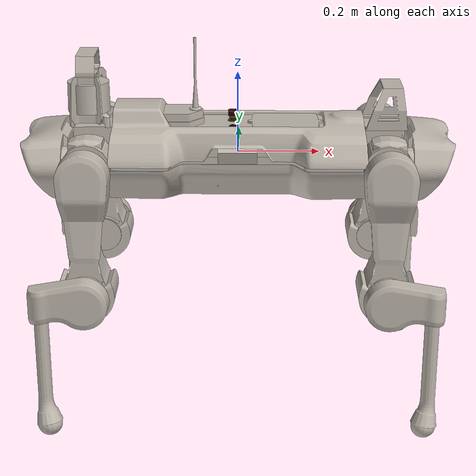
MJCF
<?xml version="1.0" ?>
<mujoco model="anymal_c">
	<compiler meshdir="anymal_c/meshes" texturedir="anymal_c/textures" angle="radian" autolimits="true" balanceinertia="true" boundmass="0.000001" boundinertia="0.000001"/>
	<default>
		<default class="visual">
			<geom contype="0" conaffinity="0"/>
		</default>
		<default class="collision">
			<geom rgba="1.0 0.0 0.0 0.0"/>
		</default>
	</default>
	<asset>
		<mesh name="base_0" file="stl/base_0.stl" scale="1.0 1.0 1.0"/>
		<mesh name="base_1" file="stl/base_1.stl" scale="1.0 1.0 1.0"/>
		<mesh name="base_2" file="stl/base_2.stl" scale="1.0 1.0 1.0"/>
		<mesh name="base_3" file="stl/base_3.stl" scale="1.0 1.0 1.0"/>
		<mesh name="base_4" file="stl/base_4.stl" scale="1.0 1.0 1.0"/>
		<mesh name="base_5" file="obj/base_5.obj" scale="1.0 1.0 1.0"/>
		<mesh name="top_shell" file="obj/top_shell.obj" scale="1.0 1.0 1.0"/>
		<mesh name="bottom_shell" file="obj/bottom_shell.obj" scale="1.0 1.0 1.0"/>
		<mesh name="remote" file="obj/remote.obj" scale="1.0 1.0 1.0"/>
		<mesh name="handle" file="obj/handle.obj" scale="1.0 1.0 1.0"/>
		<mesh name="face" file="obj/face.obj" scale="1.0 1.0 1.0"/>
		<mesh name="depth_camera" file="obj/depth_camera.obj" scale="1.0 1.0 1.0"/>
		<mesh name="wide_angle_camera" file="obj/wide_angle_camera.obj" scale="1.0 1.0 1.0"/>
		<mesh name="battery" file="obj/battery.obj" scale="1.0 1.0 1.0"/>
		<mesh name="lidar_cage" file="obj/lidar_cage.obj" scale="1.0 1.0 1.0"/>
		<mesh name="lidar" file="obj/lidar.obj" scale="1.0 1.0 1.0"/>
		<mesh name="drive" file="obj/drive.obj" scale="1.0 1.0 1.0"/>
		<mesh name="hatch" file="obj/hatch.obj" scale="1.0 1.0 1.0"/>
		<mesh name="hip_l" file="obj/hip_l.obj" scale="1.0 1.0 1.0"/>
		<mesh name="thigh" file="obj/thigh.obj" scale="1.0 1.0 1.0"/>
		<mesh name="shank_l" file="obj/shank_l.obj" scale="1.0 1.0 1.0"/>
		<mesh name="foot" file="obj/foot.obj" scale="1.0 1.0 1.0"/>
		<mesh name="hip_r" file="obj/hip_r.obj" scale="1.0 1.0 1.0"/>
		<mesh name="shank_r" file="obj/shank_r.obj" scale="1.0 1.0 1.0"/>
		<material name="green" rgba="0.052000001072883606 0.17800000309944153 0.032999999821186066 1.0" emission="0.0" specular="0.0"/>
		<material name="yellow" rgba="0.17800000309944153 0.11900000274181366 0.006000000052154064 1.0" emission="0.0" specular="0.0"/>
		<material name="red" rgba="0.17800000309944153 0.006000000052154064 0.004999999888241291 1.0" emission="0.0" specular="0.0"/>
		<material name="black_plastic" rgba="0.007000000216066837 0.007000000216066837 0.007000000216066837 1.0" emission="0.0" specular="0.0"/>
		<material name="lwl" rgba="0.800000011920929 0.800000011920929 0.800000011920929 1.0" emission="0.0" specular="0.0"/>
		<material name="base" texture="base"/>
		<material name="top_shell" texture="top_shell"/>
		<material name="bottom_shell" texture="bottom_shell"/>
		<material name="remote" texture="remote"/>
		<material name="handle" texture="handle"/>
		<material name="face" texture="face"/>
		<material name="depth_camera" texture="depth_camera"/>
		<material name="wide_angle_camera" texture="wide_angle_camera"/>
		<material name="battery" texture="battery"/>
		<material name="lidar_cage" texture="lidar_cage"/>
		<material name="lidar" texture="lidar"/>
		<material name="drive" texture="drive"/>
		<material name="hatch" texture="hatch"/>
		<material name="hip_l" texture="hip_l"/>
		<material name="thigh" texture="thigh"/>
		<material name="shank_l" texture="shank_l"/>
		<material name="foot" texture="foot"/>
		<material name="hip_r" texture="hip_r"/>
		<material name="shank" texture="shank_r"/>
		<texture name="base" type="2d" file="base.png"/>
		<texture name="top_shell" type="2d" file="top_shell.png"/>
		<texture name="bottom_shell" type="2d" file="bottom_shell.png"/>
		<texture name="remote" type="2d" file="remote.png"/>
		<texture name="handle" type="2d" file="handle.png"/>
		<texture name="face" type="2d" file="face.png"/>
		<texture name="depth_camera" type="2d" file="depth_camera.png"/>
		<texture name="wide_angle_camera" type="2d" file="wide_angle_camera.png"/>
		<texture name="battery" type="2d" file="battery.png"/>
		<texture name="lidar_cage" type="2d" file="lidar_cage.png"/>
		<texture name="lidar" type="2d" file="lidar.png"/>
		<texture name="drive" type="2d" file="drive.png"/>
		<texture name="hatch" type="2d" file="hatch.png"/>
		<texture name="hip_l" type="2d" file="hip_l.png"/>
		<texture name="thigh" type="2d" file="thigh.png"/>
		<texture name="shank_l" type="2d" file="shank_l.png"/>
		<texture name="foot" type="2d" file="foot.png"/>
		<texture name="hip_r" type="2d" file="hip_r.png"/>
		<texture name="shank_r" type="2d" file="shank_r.png"/>
	</asset>
	<worldbody>
		<body name="anymal_c" pos="0.0 0.0 0.0" quat="1.0 0.0 0.0 0.0">
			<body name="base" pos="0.0 0.0 0.0" quat="1.0 0.0 0.0 0.0">
				<geom name="Geom_0" type="mesh" pos="-0.011599770747125149 0.01999977044761181 0.08447550982236862" quat="0.5 0.5 -0.5 0.5" mesh="base_0" material="green" class="visual"/>
				<geom name="Geom_1" type="mesh" pos="-0.011599785648286343 0.019999781623482704 0.07711783796548843" quat="0.5 0.5 -0.5 0.5" mesh="base_1" material="yellow" class="visual"/>
				<geom name="Geom_2" type="mesh" pos="-0.011599860154092312 0.01999989151954651 0.0938289538025856" quat="3.1764270715939347e-06 0.7071042060852051 3.17645026370883e-06 0.7071093916893005" mesh="base_2" material="red" class="visual"/>
				<geom name="Geom_3" type="mesh" pos="-0.011599920690059662 -0.034999456256628036 0.06816615164279938" quat="1.0 0.0 0.0 0.0" mesh="base_3" material="black_plastic" class="visual"/>
				<geom name="Geom_4" type="mesh" pos="-0.011599943973124027 -0.034999407827854156 0.07339996844530106" quat="0.5 0.5 -0.5 0.5" mesh="base_4" material="lwl" class="visual"/>
				<geom name="Geom_5" type="mesh" pos="0.036819808185100555 -2.975935053939338e-09 0.021578945219516754" quat="0.0 0.72342848777771 0.0 0.6903992891311646" mesh="base_5" material="base" class="visual"/>
				<geom name="Geom_6" type="box" pos="0.0 0.0 0.0" quat="1.0 0.0 0.0 0.0" size="0.28999999165534973 0.07000000029802322 0.09000000357627869" class="collision"/>
				<geom name="Geom_7" type="cylinder" pos="0.2175000011920929 0.07000000029802322 0.0" quat="0.7071067690849304 0.0 0.7071067690849304 0.0" size="0.09000000357627869 0.07249999791383743 0.0" class="collision"/>
				<geom name="Geom_8" type="cylinder" pos="-0.2175000011920929 0.07000000029802322 0.0" quat="0.7071067690849304 0.0 0.7071067690849304 0.0" size="0.09000000357627869 0.07249999791383743 0.0" class="collision"/>
				<geom name="Geom_9" type="cylinder" pos="0.2175000011920929 -0.07000000029802322 0.0" quat="0.7071067690849304 0.0 0.7071067690849304 0.0" size="0.09000000357627869 0.07249999791383743 0.0" class="collision"/>
				<geom name="Geom_10" type="cylinder" pos="-0.2175000011920929 -0.07000000029802322 0.0" quat="0.7071067690849304 0.0 0.7071067690849304 0.0" size="0.09000000357627869 0.07249999791383743 0.0" class="collision"/>
				<geom name="Geom_11" type="mesh" pos="-0.0026326263323426247 0.00041710055666044354 0.06210428848862648" quat="-5.8360751609143335e-06 0.7142897844314575 -1.4573529369954485e-05 0.6998500227928162" mesh="top_shell" material="top_shell" class="visual"/>
				<geom name="Geom_12" type="mesh" pos="-0.0006547375814989209 4.4404549726095865e-07 -0.06612871587276459" quat="-1.1017913493560627e-05 0.707190752029419 1.965868978004437e-05 0.7070227861404419" mesh="bottom_shell" material="bottom_shell" class="visual"/>
				<geom name="Geom_13" type="mesh" pos="-0.16322645545005798 1.217122417074279e-06 0.09824134409427643" quat="0.5831565260887146 0.39986345171928406 0.3996984660625458 0.5833342671394348" mesh="remote" material="remote" class="visual"/>
				<geom name="Geom_14" type="mesh" pos="0.3647890090942383 2.5179431872857094e-09 0.11878526210784912" quat="0.7011937499046326 0.7011937499046326 0.09125423431396484 -0.09125423431396484" mesh="handle" material="handle" class="visual"/>
				<geom name="Geom_15" type="mesh" pos="0.45985445380210876 -1.9454962966847233e-05 -0.006234311033040285" quat="0.702586829662323 0.7026491165161133 0.07948784530162811 -0.07960972934961319" mesh="face" material="face" class="visual"/>
				<geom name="Geom_16" type="box" pos="0.46950000524520874 0.0 0.0" quat="1.0 0.0 0.0 0.0" size="0.054999999701976776 0.07000000029802322 0.09000000357627869" class="collision"/>
				<geom name="Geom_17" type="cylinder" pos="0.46950000524520874 0.07000000029802322 0.0" quat="0.7071067690849304 0.0 0.7071067690849304 0.0" size="0.09000000357627869 0.054999999701976776 0.0" class="collision"/>
				<geom name="Geom_18" type="cylinder" pos="0.46950000524520874 -0.07000000029802322 0.0" quat="0.7071067690849304 0.0 0.7071067690849304 0.0" size="0.09000000357627869 0.054999999701976776 0.0" class="collision"/>
				<geom name="Geom_19" type="mesh" pos="0.4747720956802368 0.0 -0.03687187656760216" quat="0.6830127239227295 0.6830127239227295 0.18301263451576233 -0.18301263451576233" mesh="depth_camera" material="depth_camera" class="visual"/>
				<geom name="Geom_20" type="mesh" pos="0.5005862712860107 -2.7428591238276567e-06 0.008976703509688377" quat="0.9979866147041321 -0.00011796713079093024 0.06342367827892303 0.0003027316415682435" mesh="wide_angle_camera" material="wide_angle_camera" class="visual"/>
				<geom name="Geom_21" type="mesh" pos="-0.45985445380210876 1.9454962966847233e-05 -0.006234311033040285" quat="0.07960972934961319 -0.07948784530162811 0.7026491165161133 0.702586829662323" mesh="face" material="face" class="visual"/>
				<geom name="Geom_22" type="box" pos="-0.46950000524520874 0.0 0.0" quat="0.0 0.0 0.0 1.0" size="0.054999999701976776 0.07000000029802322 0.09000000357627869" class="collision"/>
				<geom name="Geom_23" type="cylinder" pos="-0.46950000524520874 -0.07000000029802322 0.0" quat="0.0 -0.7071067690849304 0.0 0.7071067690849304" size="0.09000000357627869 0.054999999701976776 0.0" class="collision"/>
				<geom name="Geom_24" type="cylinder" pos="-0.46950000524520874 0.07000000029802322 0.0" quat="0.0 -0.7071067690849304 0.0 0.7071067690849304" size="0.09000000357627869 0.054999999701976776 0.0" class="collision"/>
				<geom name="Geom_25" type="mesh" pos="-0.4747720956802368 0.0 -0.03687187656760216" quat="0.18301263451576233 -0.18301263451576233 0.6830127239227295 0.6830127239227295" mesh="depth_camera" material="depth_camera" class="visual"/>
				<geom name="Geom_26" type="mesh" pos="-0.5005862712860107 2.7428591238276567e-06 0.008976703509688377" quat="-0.0003027316415682435 -0.06342367827892303 -0.00011796713079093024 0.9979866147041321" mesh="wide_angle_camera" material="wide_angle_camera" class="visual"/>
				<geom name="Geom_27" type="mesh" pos="0.00316600501537323 -5.988961859800439e-19 -0.03308949992060661" quat="0.0 0.7071067690849304 0.0 0.7071067690849304" mesh="battery" material="battery" class="visual"/>
				<geom name="Geom_28" type="mesh" pos="-8.437695129426255e-19 0.08958207815885544 0.021378111094236374" quat="0.6123725175857544 0.3535532057285309 0.6123725175857544 0.3535532057285309" mesh="depth_camera" material="depth_camera" class="visual"/>
				<geom name="Geom_29" type="mesh" pos="-8.437695129426255e-19 -0.08958207815885544 0.021378111094236374" quat="0.3535532057285309 0.6123725175857544 -0.3535532057285309 -0.6123725175857544" mesh="depth_camera" material="depth_camera" class="visual"/>
				<geom name="Geom_30" type="mesh" pos="-0.36216145753860474 6.294024205999449e-05 0.1638614982366562" quat="0.9998769164085388 -0.00061993912095204 -0.015667341649532318 -0.0005074403597973287" mesh="lidar_cage" material="lidar_cage" class="visual"/>
				<geom name="Geom_31" type="cylinder" pos="-0.36399999260902405 0.0 0.13349999487400055" quat="1.0 0.0 0.0 0.0" size="0.07000000029802322 0.05999999865889549 0.0" class="collision"/>
				<geom name="Geom_32" type="mesh" pos="-0.36399999260902405 0.0003928735386580229 0.14043888449668884" quat="0.6377901434898376 0.30532556772232056 -0.6377891898155212 0.3053276836872101" mesh="lidar" material="lidar" class="visual"/>
				<geom name="Geom_33" type="mesh" pos="0.23129335045814514 0.10364477336406708 -0.0006153398426249623" quat="-0.3530530631542206 0.6126502752304077 -0.3540867567062378 0.6120749711990356" mesh="drive" material="drive" class="visual"/>
				<geom name="Geom_34" type="mesh" pos="0.23129335045814514 -0.1036447137594223 -0.0006153053836897016" quat="0.6120780110359192 -0.35404425859451294 0.6126855611801147 -0.3530292212963104" mesh="drive" material="drive" class="visual"/>
				<geom name="Geom_35" type="mesh" pos="-0.23129335045814514 0.1036447137594223 -0.0006153053836897016" quat="-0.3530292212963104 0.6126855611801147 0.35404425859451294 -0.6120780110359192" mesh="drive" material="drive" class="visual"/>
				<geom name="Geom_36" type="mesh" pos="-0.23129335045814514 -0.10364477336406708 -0.0006153398426249623" quat="0.6120749711990356 -0.3540867567062378 -0.6126502752304077 0.3530530631542206" mesh="drive" material="drive" class="visual"/>
				<geom name="Geom_37" type="mesh" pos="0.11599999666213989 -2.804344647125423e-12 0.07641233503818512" quat="0.0 0.7071067690849304 0.0 0.7071067690849304" mesh="hatch" material="hatch" class="visual"/>
				<body name="RF_HIP" pos="0.29989999532699585 -0.10400000214576721 0.0" quat="0.25881895422935486 -0.9659258723258972 0.0 0.0">
					<inertial mass="2.7809998989105225" pos="0.05676329880952835 0.015293999575078487 -0.008297840133309364" quat="0.13523992896080017 0.6790716052055359 0.1279849261045456 0.7100645899772644" diaginertia="0.005859280005097389 0.004920499864965677 0.0032906399574130774"/>
					<geom name="Geom_52" type="mesh" pos="0.07955124974250793 -0.0013034200528636575 -0.0015909073408693075" quat="-0.36329787969589233 0.6085743308067322 -0.34360766410827637 0.6161052584648132" mesh="hip_r" material="hip_r" class="visual"/>
					<geom name="Geom_53" type="mesh" pos="0.05989996716380119 0.01281125657260418 -0.008216958492994308" quat="-0.49927523732185364 0.8664434552192688 -3.0048206099309027e-05 -2.1409646251413506e-06" mesh="drive" material="drive" class="visual"/>
					<geom name="Geom_54" type="cylinder" pos="0.05990000069141388 0.011959799565374851 -0.006905000191181898" quat="-0.35355329513549805 0.6123725175857544 0.6123725175857544 0.35355329513549805" size="0.05000000074505806 0.07000000029802322 0.0" class="collision"/>
					<joint name="RF_HAA" type="hinge" pos="0.0 0.0 0.0" range="-0.49000000953674316 0.7200000286102295" axis="1.0 0.0 0.0"/>
					<body name="RF_THIGH" pos="0.05990000069141388 0.07258159667253494 -0.0419050008058548" quat="0.18301290273666382 0.6830126643180847 0.6830126643180847 -0.18301290273666382">
						<inertial mass="3.071000099182129" pos="0.030814699828624725 4.649949914892204e-05 -0.24569599330425262" quat="0.9927749037742615 -0.005127349402755499 -0.08066849410533905 0.08868108689785004" diaginertia="0.030251100659370422 0.0298932995647192 0.004184499848634005"/>
						<geom name="Geom_55" type="mesh" pos="0.019896067678928375 -3.135157749056816e-05 -0.1903664767742157" quat="0.9995383620262146 -8.072755008470267e-06 0.03038012981414795 0.00025633489713072777" mesh="thigh" material="thigh" class="visual"/>
						<geom name="Geom_56" type="cylinder" pos="0.03999999910593033 0.0 0.0" quat="0.5 0.5 0.5 0.5" size="0.06499999761581421 0.03999999910593033 0.0" class="collision"/>
						<geom name="Geom_57" type="box" pos="0.029999999329447746 0.0 -0.14131399989128113" quat="0.7071067690849304 0.0 0.0 0.7071067690849304" size="0.03750000149011612 0.029999999329447746 0.14131399989128113" class="collision"/>
						<geom name="Geom_58" type="mesh" pos="0.031693343073129654 -3.448225882607403e-08 -0.28428947925567627" quat="0.5003978610038757 0.49958860874176025 0.4995746612548828 0.5004381537437439" mesh="drive" material="drive" class="visual"/>
						<geom name="Geom_59" type="cylinder" pos="0.030300000682473183 0.0 -0.2849999964237213" quat="0.7071067690849304 0.0 0.7071067690849304 0.0" size="0.05000000074505806 0.07000000029802322 0.0" class="collision"/>
						<joint name="RF_HFE" type="hinge" pos="0.0 0.0 0.0" range="-9.424779891967773 9.424779891967773" axis="-1.0 0.0 0.0"/>
						<body name="RF_SHANK" pos="0.10029999911785126 0.0 -0.2849999964237213" quat="1.0 0.0 0.0 0.0">
							<inertial mass="0.5884199738502502" pos="0.005462000146508217 0.06125279888510704 -0.08065979927778244" quat="0.992933988571167 0.11590399593114853 -0.0010548699647188187 0.025442099198698997" diaginertia="0.010163700208067894 0.009238380007445812 0.0011192699894309044"/>
							<geom name="Geom_60" type="mesh" pos="0.006487637292593718 0.034592535346746445 0.0008805529796518385" quat="-0.0017478355439379811 -0.00019462202908471227 0.7092111110687256 0.7049939632415771" mesh="shank_r" material="shank" class="visual"/>
							<geom name="Geom_61" type="cylinder" pos="0.019999999552965164 0.0 0.0" quat="0.5 0.5 0.5 0.5" size="0.05999999865889549 0.019999999552965164 0.0" class="collision"/>
							<geom name="Geom_62" type="box" pos="0.019999999552965164 0.057498998939991 0.0" quat="0.5 0.5 0.5 0.5" size="0.057498998939991 0.03375000134110451 0.01899999938905239" class="collision"/>
							<geom name="Geom_63" type="mesh" pos="0.0019037557067349553 0.09909936040639877 -0.19530461728572845" quat="-0.38260531425476074 -0.007759032770991325 0.01873193122446537 0.9236893653869629" mesh="foot" material="foot" class="visual"/>
							<geom name="Geom_64" type="cylinder" pos="0.013050000183284283 0.08794999867677689 -0.16898499429225922" quat="0.7071067690849304 0.0 0.0 0.7071067690849304" size="0.017500000074505806 0.14125199615955353 0.0" class="collision"/>
							<geom name="Geom_65" type="sphere" pos="0.013050000183284283 0.08794999867677689 -0.31547001004219055" quat="0.7071067690849304 0.0 0.0 0.7071067690849304" size="0.029999999329447746 0.0 0.0" class="collision"/>
							<joint name="RF_KFE" type="hinge" pos="0.0 0.0 0.0" range="-9.424779891967773 9.424779891967773" axis="-1.0 0.0 0.0"/>
						</body>
					</body>
				</body>
				<body name="LH_HIP" pos="-0.29989999532699585 0.10400000214576721 0.0" quat="0.0 0.0 0.9659258723258972 -0.25881895422935486">
					<inertial mass="2.7809998989105225" pos="0.05676329880952835 0.015293999575078487 -0.008297840133309364" quat="0.13523992896080017 0.6790716052055359 0.1279849261045456 0.7100645899772644" diaginertia="0.005859280005097389 0.004920499864965677 0.0032906399574130774"/>
					<geom name="Geom_66" type="mesh" pos="0.07955124974250793 -0.0013034200528636575 -0.0015909073408693075" quat="0.36329787969589233 -0.6085743308067322 0.34360766410827637 -0.6161052584648132" mesh="hip_r" material="hip_r" class="visual"/>
					<geom name="Geom_67" type="mesh" pos="0.05989996716380119 0.01281125657260418 -0.008216958492994308" quat="-0.49927523732185364 0.8664434552192688 -3.0048206099309027e-05 -2.1409646251413506e-06" mesh="drive" material="drive" class="visual"/>
					<geom name="Geom_68" type="cylinder" pos="0.05990000069141388 0.011959799565374851 -0.006905000191181898" quat="-0.35355329513549805 0.6123725175857544 0.6123725175857544 0.35355329513549805" size="0.05000000074505806 0.07000000029802322 0.0" class="collision"/>
					<joint name="LH_HAA" type="hinge" pos="0.0 0.0 0.0" range="-0.7200000286102295 0.49000000953674316" axis="-1.0 0.0 0.0"/>
					<body name="LH_THIGH" pos="0.05990000069141388 0.07258159667253494 -0.0419050008058548" quat="0.18301290273666382 0.6830126643180847 0.6830126643180847 -0.18301290273666382">
						<inertial mass="3.071000099182129" pos="0.030814699828624725 4.649949914892204e-05 -0.24569599330425262" quat="0.9927749037742615 -0.005127349402755499 -0.08066849410533905 0.08868108689785004" diaginertia="0.030251100659370422 0.0298932995647192 0.004184499848634005"/>
						<geom name="Geom_69" type="mesh" pos="0.019896067678928375 -3.135157749056816e-05 -0.1903664767742157" quat="0.9995383620262146 -8.072755008470267e-06 0.03038012981414795 0.00025633489713072777" mesh="thigh" material="thigh" class="visual"/>
						<geom name="Geom_70" type="cylinder" pos="0.03999999910593033 0.0 0.0" quat="0.5 0.5 -0.5 -0.5" size="0.06499999761581421 0.03999999910593033 0.0" class="collision"/>
						<geom name="Geom_71" type="box" pos="0.029999999329447746 0.0 -0.14131399989128113" quat="0.7071067690849304 0.0 0.0 -0.7071067690849304" size="0.03750000149011612 0.029999999329447746 0.14131399989128113" class="collision"/>
						<geom name="Geom_72" type="mesh" pos="0.031693343073129654 -3.448225882607403e-08 -0.28428947925567627" quat="0.5003978610038757 0.49958860874176025 0.4995746612548828 0.5004381537437439" mesh="drive" material="drive" class="visual"/>
						<geom name="Geom_73" type="cylinder" pos="0.030300000682473183 0.0 -0.2849999964237213" quat="0.7071067690849304 0.0 0.7071067690849304 0.0" size="0.05000000074505806 0.07000000029802322 0.0" class="collision"/>
						<joint name="LH_HFE" type="hinge" pos="0.0 0.0 0.0" range="-9.424779891967773 9.424779891967773" axis="1.0 0.0 0.0"/>
						<body name="LH_SHANK" pos="0.10029999911785126 0.0 -0.2849999964237213" quat="1.0 0.0 0.0 0.0">
							<inertial mass="0.5884199738502502" pos="0.005462000146508217 0.06125279888510704 -0.08065979927778244" quat="0.992933988571167 0.11590399593114853 -0.0010548699647188187 0.025442099198698997" diaginertia="0.010163700208067894 0.009238380007445812 0.0011192699894309044"/>
							<geom name="Geom_74" type="mesh" pos="0.006487637292593718 0.034592535346746445 0.0008805529796518385" quat="0.0017478355439379811 0.00019462202908471227 -0.7092111110687256 -0.7049939632415771" mesh="shank_r" material="shank" class="visual"/>
							<geom name="Geom_75" type="cylinder" pos="0.019999999552965164 0.0 0.0" quat="0.5 0.5 -0.5 -0.5" size="0.05999999865889549 0.019999999552965164 0.0" class="collision"/>
							<geom name="Geom_76" type="box" pos="0.019999999552965164 0.057498998939991 0.0" quat="0.5 0.5 -0.5 -0.5" size="0.057498998939991 0.03375000134110451 0.01899999938905239" class="collision"/>
							<geom name="Geom_77" type="mesh" pos="0.0019037557067349553 0.09909936040639877 -0.19530461728572845" quat="0.38260531425476074 0.007759032770991325 -0.01873193122446537 -0.9236893653869629" mesh="foot" material="foot" class="visual"/>
							<geom name="Geom_78" type="cylinder" pos="0.013050000183284283 0.08794999867677689 -0.16898499429225922" quat="0.7071067690849304 0.0 0.0 -0.7071067690849304" size="0.017500000074505806 0.14125199615955353 0.0" class="collision"/>
							<geom name="Geom_79" type="sphere" pos="0.013050000183284283 0.08794999867677689 -0.31547001004219055" quat="0.7071067690849304 0.0 0.0 -0.7071067690849304" size="0.029999999329447746 0.0 0.0" class="collision"/>
							<joint name="LH_KFE" type="hinge" pos="0.0 0.0 0.0" range="-9.424779891967773 9.424779891967773" axis="1.0 0.0 0.0"/>
						</body>
					</body>
				</body>
				<body name="RH_HIP" pos="-0.29989999532699585 -0.10400000214576721 0.0" quat="0.0 0.0 -0.9659258723258972 -0.25881895422935486">
					<inertial mass="2.7809998989105225" pos="0.05666060000658035 -0.015293999575078487 -0.008297840133309364" quat="-0.12797805666923523 0.7097833156585693 -0.13527806103229523 0.6793593168258667" diaginertia="0.005857289768755436 0.004918680060654879 0.0032908099237829447"/>
					<geom name="Geom_80" type="mesh" pos="0.07955124229192734 0.0013034289004281163 -0.0015909208450466394" quat="-0.6161043047904968 0.3436092436313629 -0.6085734963417053 0.3632994294166565" mesh="hip_l" material="hip_l" class="visual"/>
					<geom name="Geom_81" type="mesh" pos="0.059900034219026566 -0.01281125657260418 -0.008216958492994308" quat="-2.1409646251413506e-06 -3.0048206099309027e-05 -0.8664434552192688 0.49927523732185364" mesh="drive" material="drive" class="visual"/>
					<geom name="Geom_82" type="cylinder" pos="0.05990000069141388 -0.011959799565374851 -0.006905000191181898" quat="0.35355329513549805 0.6123725175857544 -0.6123725175857544 0.35355329513549805" size="0.05000000074505806 0.07000000029802322 0.0" class="collision"/>
					<joint name="RH_HAA" type="hinge" pos="0.0 0.0 0.0" range="-0.49000000953674316 0.7200000286102295" axis="-1.0 0.0 0.0"/>
					<body name="RH_THIGH" pos="0.05990000069141388 -0.07258159667253494 -0.0419050008058548" quat="-0.18301290273666382 0.6830126643180847 -0.6830126643180847 -0.18301290273666382">
						<inertial mass="3.071000099182129" pos="0.030814699828624725 4.649949914892204e-05 -0.24569599330425262" quat="0.9931658506393433 -0.0051530892960727215 -0.08065918833017349 0.08419718593358994" diaginertia="0.030249999836087227 0.029894299805164337 0.004184649791568518"/>
						<geom name="Geom_83" type="mesh" pos="0.019896067678928375 -3.135157749056816e-05 -0.1903664767742157" quat="0.9995383620262146 -8.072755008470267e-06 0.03038012981414795 0.00025633489713072777" mesh="thigh" material="thigh" class="visual"/>
						<geom name="Geom_84" type="cylinder" pos="0.03999999910593033 0.0 0.0" quat="0.5 0.5 0.5 0.5" size="0.06499999761581421 0.03999999910593033 0.0" class="collision"/>
						<geom name="Geom_85" type="box" pos="0.029999999329447746 0.0 -0.14131399989128113" quat="0.7071067690849304 0.0 0.0 0.7071067690849304" size="0.03750000149011612 0.029999999329447746 0.14131399989128113" class="collision"/>
						<geom name="Geom_86" type="mesh" pos="0.031693343073129654 -3.448225882607403e-08 -0.28428947925567627" quat="0.5003978610038757 0.49958860874176025 0.4995746612548828 0.5004381537437439" mesh="drive" material="drive" class="visual"/>
						<geom name="Geom_87" type="cylinder" pos="0.030300000682473183 0.0 -0.2849999964237213" quat="0.7071067690849304 0.0 0.7071067690849304 0.0" size="0.05000000074505806 0.07000000029802322 0.0" class="collision"/>
						<joint name="RH_HFE" type="hinge" pos="0.0 0.0 0.0" range="-9.424779891967773 9.424779891967773" axis="-1.0 0.0 0.0"/>
						<body name="RH_SHANK" pos="0.10029999911785126 0.0 -0.2849999964237213" quat="1.0 0.0 0.0 0.0">
							<inertial mass="0.5884199738502502" pos="0.005462000146508217 -0.06125279888510704 -0.08065979927778244" quat="0.992933988571167 -0.11590399593114853 -0.0010548699647188187 -0.025442099198698997" diaginertia="0.010163700208067894 0.009238380007445812 0.0011192699894309044"/>
							<geom name="Geom_88" type="mesh" pos="0.006487672682851553 -0.034592606127262115 0.0008805167744867504" quat="0.7049943208694458 0.7092107534408569 -0.00019440350297372788 -0.0017484832787886262" mesh="shank_l" material="shank_l" class="visual"/>
							<geom name="Geom_89" type="cylinder" pos="0.019999999552965164 0.0 0.0" quat="0.5 0.5 0.5 0.5" size="0.05999999865889549 0.019999999552965164 0.0" class="collision"/>
							<geom name="Geom_90" type="box" pos="0.019999999552965164 -0.057498998939991 0.0" quat="0.5 0.5 0.5 0.5" size="0.057498998939991 0.03375000134110451 0.01899999938905239" class="collision"/>
							<geom name="Geom_91" type="mesh" pos="0.0019006143556907773 -0.09909621626138687 -0.19530461728572845" quat="0.9236893653869629 0.01873193122446537 -0.007759032770991325 -0.38260531425476074" mesh="foot" material="foot" class="visual"/>
							<geom name="Geom_92" type="cylinder" pos="0.013050000183284283 -0.08794999867677689 -0.16898499429225922" quat="0.7071067690849304 0.0 0.0 0.7071067690849304" size="0.017500000074505806 0.14125199615955353 0.0" class="collision"/>
							<geom name="Geom_93" type="sphere" pos="0.013050000183284283 -0.08794999867677689 -0.31547001004219055" quat="0.7071067690849304 0.0 0.0 0.7071067690849304" size="0.029999999329447746 0.0 0.0" class="collision"/>
							<joint name="RH_KFE" type="hinge" pos="0.0 0.0 0.0" range="-9.424779891967773 9.424779891967773" axis="-1.0 0.0 0.0"/>
						</body>
					</body>
				</body>
				<body name="LF_HIP" pos="0.29989999532699585 0.10400000214576721 0.0" quat="0.25881895422935486 0.9659258723258972 0.0 0.0">
					<inertial mass="2.7809998989105225" pos="0.05666060000658035 -0.015293999575078487 -0.008297840133309364" quat="-0.12797805666923523 0.7097833156585693 -0.13527806103229523 0.6793593168258667" diaginertia="0.005857289768755436 0.004918680060654879 0.0032908099237829447"/>
					<geom name="Geom_38" type="mesh" pos="0.07955124229192734 0.0013034289004281163 -0.0015909208450466394" quat="0.6161043047904968 -0.3436092436313629 0.6085734963417053 -0.3632994294166565" mesh="hip_l" material="hip_l" class="visual"/>
					<geom name="Geom_39" type="mesh" pos="0.059900034219026566 -0.01281125657260418 -0.008216958492994308" quat="2.1409646251413506e-06 3.0048206099309027e-05 0.8664434552192688 -0.49927523732185364" mesh="drive" material="drive" class="visual"/>
					<geom name="Geom_40" type="cylinder" pos="0.05990000069141388 -0.011959799565374851 -0.006905000191181898" quat="-0.35355329513549805 -0.6123725175857544 0.6123725175857544 -0.35355329513549805" size="0.05000000074505806 0.07000000029802322 0.0" class="collision"/>
					<joint name="LF_HAA" type="hinge" pos="0.0 0.0 0.0" range="-0.7200000286102295 0.49000000953674316" axis="1.0 0.0 0.0"/>
					<body name="LF_THIGH" pos="0.05990000069141388 -0.07258159667253494 -0.0419050008058548" quat="0.18301290273666382 -0.6830126643180847 0.6830126643180847 0.18301290273666382">
						<inertial mass="3.071000099182129" pos="0.030814699828624725 4.649949914892204e-05 -0.24569599330425262" quat="0.9931658506393433 -0.0051530892960727215 -0.08065918833017349 0.08419718593358994" diaginertia="0.030249999836087227 0.029894299805164337 0.004184649791568518"/>
						<geom name="Geom_41" type="mesh" pos="0.019896067678928375 -3.135157749056816e-05 -0.1903664767742157" quat="0.9995383620262146 -8.072755008470267e-06 0.03038012981414795 0.00025633489713072777" mesh="thigh" material="thigh" class="visual"/>
						<geom name="Geom_42" type="cylinder" pos="0.03999999910593033 0.0 0.0" quat="0.5 0.5 -0.5 -0.5" size="0.06499999761581421 0.03999999910593033 0.0" class="collision"/>
						<geom name="Geom_43" type="box" pos="0.029999999329447746 0.0 -0.14131399989128113" quat="0.7071067690849304 0.0 0.0 -0.7071067690849304" size="0.03750000149011612 0.029999999329447746 0.14131399989128113" class="collision"/>
						<geom name="Geom_44" type="mesh" pos="0.031693343073129654 -3.448225882607403e-08 -0.28428947925567627" quat="0.5003978610038757 0.49958860874176025 0.4995746612548828 0.5004381537437439" mesh="drive" material="drive" class="visual"/>
						<geom name="Geom_45" type="cylinder" pos="0.030300000682473183 0.0 -0.2849999964237213" quat="0.7071067690849304 0.0 0.7071067690849304 0.0" size="0.05000000074505806 0.07000000029802322 0.0" class="collision"/>
						<joint name="LF_HFE" type="hinge" pos="0.0 0.0 0.0" range="-9.424779891967773 9.424779891967773" axis="1.0 0.0 0.0"/>
						<body name="LF_SHANK" pos="0.10029999911785126 0.0 -0.2849999964237213" quat="1.0 0.0 0.0 0.0">
							<inertial mass="0.5884199738502502" pos="0.005462000146508217 -0.06125279888510704 -0.08065979927778244" quat="0.992933988571167 -0.11590399593114853 -0.0010548699647188187 -0.025442099198698997" diaginertia="0.010163700208067894 0.009238380007445812 0.0011192699894309044"/>
							<geom name="Geom_46" type="mesh" pos="0.006487672682851553 -0.034592606127262115 0.0008805167744867504" quat="0.7049943208694458 0.7092107534408569 -0.00019440350297372788 -0.0017484832787886262" mesh="shank_l" material="shank_l" class="visual"/>
							<geom name="Geom_47" type="cylinder" pos="0.019999999552965164 0.0 0.0" quat="0.5 0.5 -0.5 -0.5" size="0.05999999865889549 0.019999999552965164 0.0" class="collision"/>
							<geom name="Geom_48" type="box" pos="0.019999999552965164 -0.057498998939991 0.0" quat="0.5 0.5 -0.5 -0.5" size="0.057498998939991 0.03375000134110451 0.01899999938905239" class="collision"/>
							<geom name="Geom_49" type="mesh" pos="0.0019006143556907773 -0.09909621626138687 -0.19530461728572845" quat="0.9236893653869629 0.01873193122446537 -0.007759032770991325 -0.38260531425476074" mesh="foot" material="foot" class="visual"/>
							<geom name="Geom_50" type="cylinder" pos="0.013050000183284283 -0.08794999867677689 -0.16898499429225922" quat="0.7071067690849304 0.0 0.0 -0.7071067690849304" size="0.017500000074505806 0.14125199615955353 0.0" class="collision"/>
							<geom name="Geom_51" type="sphere" pos="0.013050000183284283 -0.08794999867677689 -0.31547001004219055" quat="0.7071067690849304 0.0 0.0 -0.7071067690849304" size="0.029999999329447746 0.0 0.0" class="collision"/>
							<joint name="LF_KFE" type="hinge" pos="0.0 0.0 0.0" range="-9.424779891967773 9.424779891967773" axis="1.0 0.0 0.0"/>
						</body>
					</body>
				</body>
			</body>
		</body>
	</worldbody>
	<equality/>
</mujoco>
